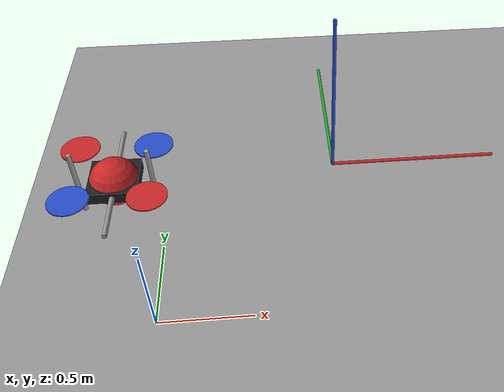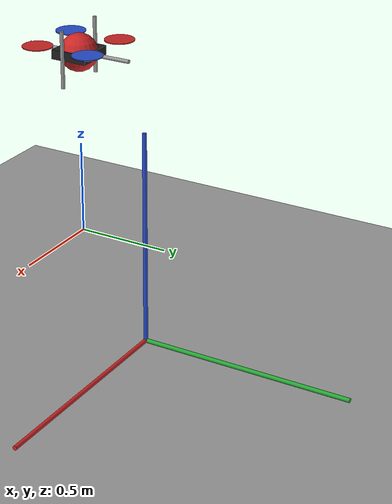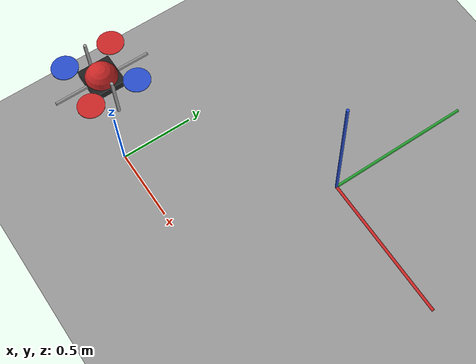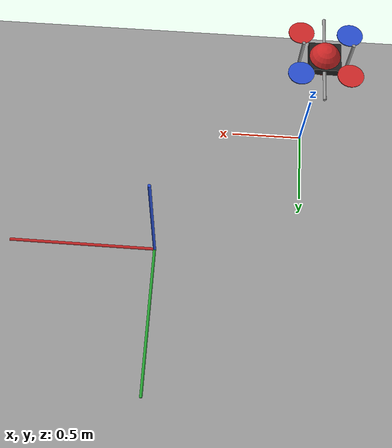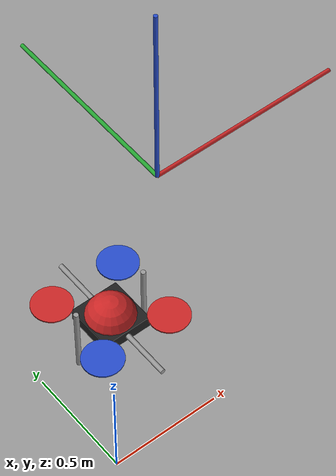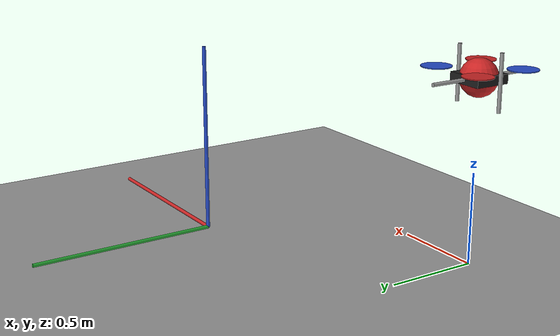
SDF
<?xml version="1.0" ?>
<sdf version="1.6">
  <world name="quadrotor_world">

    <!-- Physics -->
    <physics name="default_physics" default="0" type="ode">
      <gravity>0 0 -9.81</gravity>
      <ode>
        <solver>
          <type>quick</type>
          <iters>50</iters>
          <sor>1.0</sor>
        </solver>
        <constraints>
          <cfm>0.0</cfm>
          <erp>0.2</erp>
          <contact_max_correcting_vel>100.0</contact_max_correcting_vel>
          <contact_surface_layer>0.001</contact_surface_layer>
        </constraints>
      </ode>
      <real_time_factor>1.0</real_time_factor>
      <real_time_update_rate>1000.0</real_time_update_rate>
    </physics>

    <!-- Scene -->
    <scene>
      <ambient>0.4 0.4 0.4 1</ambient>
      <background>0.7 0.7 1 1</background>
      <shadows>true</shadows>
    </scene>

    <!-- Sun -->
    <include>
      <uri>model://sun</uri>
    </include>

    <!-- Ground plane -->
    <include>
      <uri>model://ground_plane</uri>
    </include>

    <!-- Grid pattern for visual reference -->
    <model name="grid">
      <pose>0 0 0.01 0 0 0</pose>
      <static>true</static>
      <link name="grid_link">
        <visual name="grid_visual">
          <geometry>
            <plane>
              <normal>0 0 1</normal>
              <size>20 20</size>
            </plane>
          </geometry>
          <material>
            <script>
              <uri>file://media/materials/scripts/gazebo.material</uri>
              <name>Gazebo/Grey</name>
            </script>
          </material>
        </visual>
      </link>
    </model>

    <!-- Reference markers -->
    <model name="target_marker">
      <pose>0 0 1 0 0 0</pose>
      <static>true</static>
      <link name="target_link">
        <visual name="target_visual">
          <geometry>
            <sphere>
              <radius>0.1</radius>
            </sphere>
          </geometry>
          <material>
            <script>
              <uri>file://media/materials/scripts/gazebo.material</uri>
              <name>Gazebo/Red</name>
            </script>
          </material>
        </visual>
      </link>
    </model>

    <!-- Coordinate frame indicator -->
    <model name="axes">
      <pose>1 1 0 0 0 0</pose>
      <static>true</static>
      <link name="x_axis">
        <pose>0.5 0 0.1 0 1.57079 0</pose>
        <visual name="x_visual">
          <geometry>
            <cylinder>
              <radius>0.01</radius>
              <length>1</length>
            </cylinder>
          </geometry>
          <material>
            <script>
              <uri>file://media/materials/scripts/gazebo.material</uri>
              <name>Gazebo/Red</name>
            </script>
          </material>
        </visual>
      </link>
      <link name="y_axis">
        <pose>0 0.5 0.1 1.57079 0 0</pose>
        <visual name="y_visual">
          <geometry>
            <cylinder>
              <radius>0.01</radius>
              <length>1</length>
            </cylinder>
          </geometry>
          <material>
            <script>
              <uri>file://media/materials/scripts/gazebo.material</uri>
              <name>Gazebo/Green</name>
            </script>
          </material>
        </visual>
      </link>
      <link name="z_axis">
        <pose>0 0 0.6 0 0 0</pose>
        <visual name="z_visual">
          <geometry>
            <cylinder>
              <radius>0.01</radius>
              <length>1</length>
            </cylinder>
          </geometry>
          <material>
            <script>
              <uri>file://media/materials/scripts/gazebo.material</uri>
              <name>Gazebo/Blue</name>
            </script>
          </material>
        </visual>
      </link>
    </model>

    <!-- Simple quadrotor visual model -->
    <model name="quadrotor_visual">
      <pose>0 0 1 0 0 0</pose>
      <link name="base_link">
        <!-- Main body -->
        <visual name="body_visual">
          <geometry>
            <box>
              <size>0.2 0.2 0.05</size>
            </box>
          </geometry>
          <material>
            <script>
              <uri>file://media/materials/scripts/gazebo.material</uri>
              <name>Gazebo/Black</name>
            </script>
          </material>
        </visual>

        <!-- Arms -->
        <visual name="arm1_visual">
          <pose>0.15 0 0 0 0 0</pose>
          <geometry>
            <cylinder>
              <radius>0.01</radius>
              <length>0.3</length>
            </cylinder>
          </geometry>
          <material>
            <script>
              <uri>file://media/materials/scripts/gazebo.material</uri>
              <name>Gazebo/Grey</name>
            </script>
          </material>
        </visual>

        <visual name="arm2_visual">
          <pose>-0.15 0 0 0 0 0</pose>
          <geometry>
            <cylinder>
              <radius>0.01</radius>
              <length>0.3</length>
            </cylinder>
          </geometry>
          <material>
            <script>
              <uri>file://media/materials/scripts/gazebo.material</uri>
              <name>Gazebo/Grey</name>
            </script>
          </material>
        </visual>

        <visual name="arm3_visual">
          <pose>0 0.15 0 1.57079 0 0</pose>
          <geometry>
            <cylinder>
              <radius>0.01</radius>
              <length>0.3</length>
            </cylinder>
          </geometry>
          <material>
            <script>
              <uri>file://media/materials/scripts/gazebo.material</uri>
              <name>Gazebo/Grey</name>
            </script>
          </material>
        </visual>

        <visual name="arm4_visual">
          <pose>0 -0.15 0 1.57079 0 0</pose>
          <geometry>
            <cylinder>
              <radius>0.01</radius>
              <length>0.3</length>
            </cylinder>
          </geometry>
          <material>
            <script>
              <uri>file://media/materials/scripts/gazebo.material</uri>
              <name>Gazebo/Grey</name>
            </script>
          </material>
        </visual>

        <!-- Propellers -->
        <visual name="prop1_visual">
          <pose>0.15 0.15 0.05 0 0 0</pose>
          <geometry>
            <cylinder>
              <radius>0.08</radius>
              <length>0.005</length>
            </cylinder>
          </geometry>
          <material>
            <script>
              <uri>file://media/materials/scripts/gazebo.material</uri>
              <name>Gazebo/Blue</name>
            </script>
          </material>
        </visual>

        <visual name="prop2_visual">
          <pose>-0.15 -0.15 0.05 0 0 0</pose>
          <geometry>
            <cylinder>
              <radius>0.08</radius>
              <length>0.005</length>
            </cylinder>
          </geometry>
          <material>
            <script>
              <uri>file://media/materials/scripts/gazebo.material</uri>
              <name>Gazebo/Blue</name>
            </script>
          </material>
        </visual>

        <visual name="prop3_visual">
          <pose>0.15 -0.15 0.05 0 0 0</pose>
          <geometry>
            <cylinder>
              <radius>0.08</radius>
              <length>0.005</length>
            </cylinder>
          </geometry>
          <material>
            <script>
              <uri>file://media/materials/scripts/gazebo.material</uri>
              <name>Gazebo/Red</name>
            </script>
          </material>
        </visual>

        <visual name="prop4_visual">
          <pose>-0.15 0.15 0.05 0 0 0</pose>
          <geometry>
            <cylinder>
              <radius>0.08</radius>
              <length>0.005</length>
            </cylinder>
          </geometry>
          <material>
            <script>
              <uri>file://media/materials/scripts/gazebo.material</uri>
              <name>Gazebo/Red</name>
            </script>
          </material>
        </visual>
      </link>

      <!-- Plugin to follow ROS transforms -->
      <plugin name="gazebo_ros_p3d" filename="libgazebo_ros_p3d.so">
        <ros>
          <namespace>/quadrotor</namespace>
        </ros>
        <body_name>base_link</body_name>
        <frame_name>world</frame_name>
        <update_rate>50.0</update_rate>
      </plugin>
    </model>

  </world>
</sdf>
